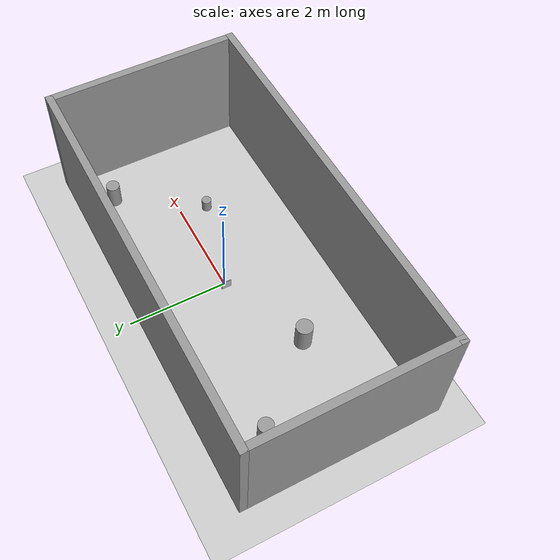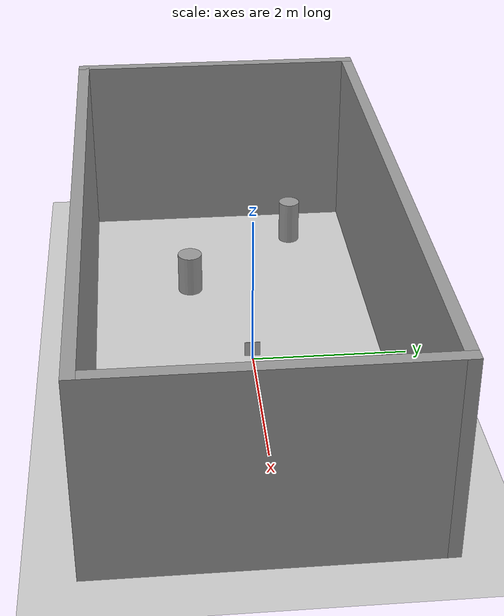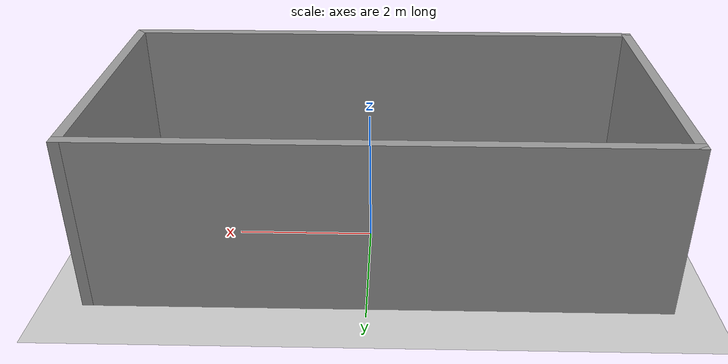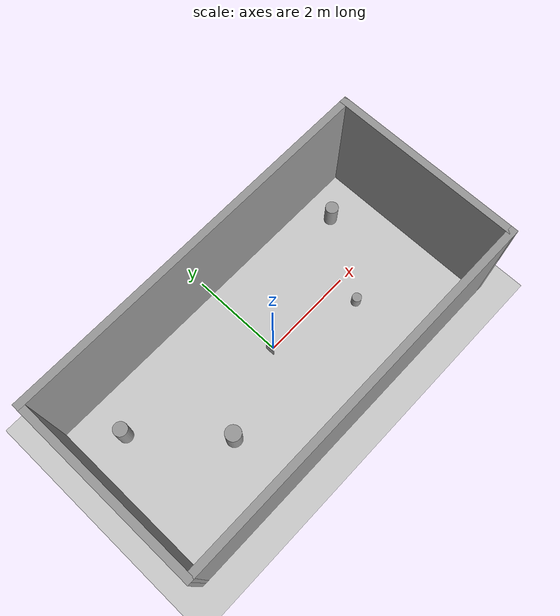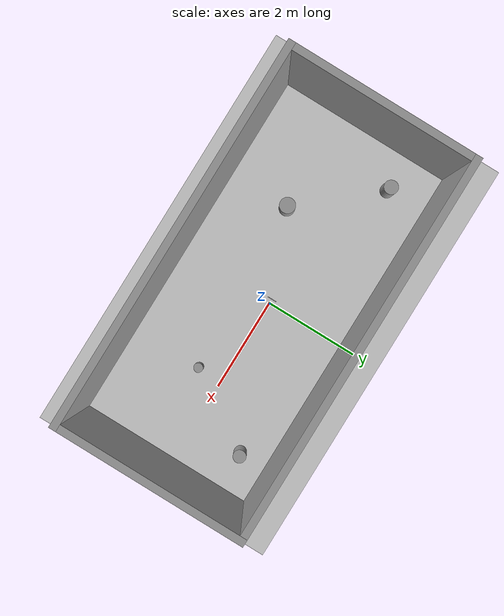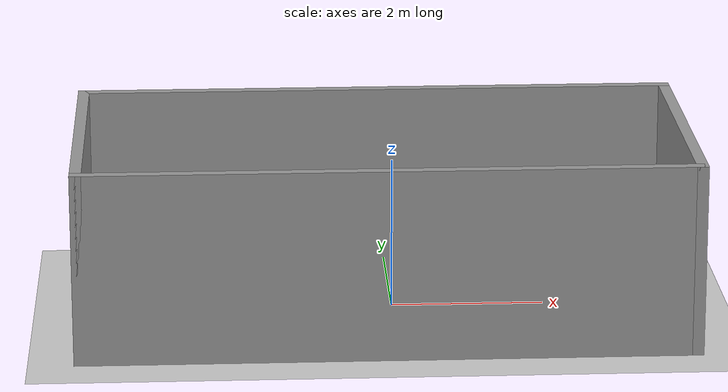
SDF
<sdf version="1.7">
 <world name="default">
  <light name="sun" type="directional">
   <pose>0 0 10 0 -0 0</pose>
   <diffuse>0.8 0.8 0.8 1</diffuse>
   <specular>0.2 0.2 0.2 1</specular>
   <attenuation>
    <range>1000</range>
    <constant>0.9</constant>
    <linear>0.01</linear>
    <quadratic>0.001</quadratic>
   </attenuation>
   <direction>-0.5 0.1 -0.9</direction>
   <spot><inner_angle>0</inner_angle><outer_angle>0</outer_angle><falloff>0</falloff></spot>
  </light>
  <model name="ground_plane">
   <static>1</static>
   <link name="link">
    <collision name="collision">
     <geometry><plane><normal>0 0 1</normal><size>100 100</size></plane></geometry>
     <surface>
      <contact><collide_bitmask>65535</collide_bitmask></contact>
      <friction><ode><mu>100</mu><mu2>50</mu2></ode></friction>
     </surface>
    </collision>
    <visual name="visual">
     <cast_shadows>0</cast_shadows>
     <geometry><plane><normal>0 0 1</normal><size>100 100</size></plane></geometry>
     <material>
      <script><uri>file://media/materials/scripts/gazebo.material</uri><name>Gazebo/Grey</name></script>
     </material>
    </visual>
   </link>
  </model>
  <gravity>0 0 -9.8</gravity>
  <magnetic_field>6e-06 2.3e-05 -4.2e-05</magnetic_field>
  <atmosphere type="adiabatic"/>
  <physics type="ode">
   <max_step_size>0.001</max_step_size>
   <real_time_factor>1</real_time_factor>
   <real_time_update_rate>1000</real_time_update_rate>
  </physics>
  <scene><ambient>0.4 0.4 0.4 1</ambient><background>0.7 0.7 0.7 1</background><shadows>1</shadows></scene>
  <spherical_coordinates>
   <surface_model>EARTH_WGS84</surface_model>
   <latitude_deg>0</latitude_deg>
   <longitude_deg>0</longitude_deg>
   <elevation>0</elevation>
   <heading_deg>0</heading_deg>
  </spherical_coordinates>
  <model name="model">
   <pose>-0.134607 0.15649 0 0 -0 0</pose>
   <link name="Wall_0">
    <collision name="Wall_0_Collision">
     <geometry><box><size>8 0.15 2.5</size></box></geometry>
     <pose>0 0 1.25 0 -0 0</pose>
    </collision>
    <visual name="Wall_0_Visual">
     <pose>0 0 1.25 0 -0 0</pose>
     <geometry><box><size>8 0.15 2.5</size></box></geometry>
     <material>
      <script><uri>file://media/materials/scripts/gazebo.material</uri><name>Gazebo/Grey</name></script>
      <ambient>1 1 1 1</ambient>
     </material>
     <meta><layer>0</layer></meta>
    </visual>
    <pose>0 -2.2525 0 0 -0 0</pose>
   </link>
   <link name="Wall_1">
    <collision name="Wall_1_Collision">
     <geometry><box><size>4 0.15 2.5</size></box></geometry>
     <pose>0 0 1.25 0 -0 0</pose>
    </collision>
    <visual name="Wall_1_Visual">
     <pose>0 0 1.25 0 -0 0</pose>
     <geometry><box><size>4 0.15 2.5</size></box></geometry>
     <material>
      <script><uri>file://media/materials/scripts/gazebo.material</uri><name>Gazebo/Grey</name></script>
      <ambient>1 1 1 1</ambient>
     </material>
     <meta><layer>0</layer></meta>
    </visual>
    <pose>3.925 -0.3275 0 0 -0 1.5708</pose>
   </link>
   <link name="Wall_2">
    <collision name="Wall_2_Collision">
     <geometry><box><size>8 0.15 2.5</size></box></geometry>
     <pose>0 0 1.25 0 -0 0</pose>
    </collision>
    <visual name="Wall_2_Visual">
     <pose>0 0 1.25 0 -0 0</pose>
     <geometry><box><size>8 0.15 2.5</size></box></geometry>
     <material>
      <script><uri>file://media/materials/scripts/gazebo.material</uri><name>Gazebo/Grey</name></script>
      <ambient>1 1 1 1</ambient>
     </material>
     <meta><layer>0</layer></meta>
    </visual>
    <pose>0 1.5975 0 0 -0 3.14159</pose>
   </link>
   <link name="Wall_3">
    <collision name="Wall_3_Collision">
     <geometry><box><size>4 0.15 2.5</size></box></geometry>
     <pose>0 0 1.25 0 -0 0</pose>
    </collision>
    <visual name="Wall_3_Visual">
     <pose>0 0 1.25 0 -0 0</pose>
     <geometry><box><size>4 0.15 2.5</size></box></geometry>
     <material>
      <script><uri>file://media/materials/scripts/gazebo.material</uri><name>Gazebo/Grey</name></script>
      <ambient>1 1 1 1</ambient>
     </material>
     <meta><layer>0</layer></meta>
    </visual>
    <pose>-3.925 -0.3275 0 0 -0 -1.5708</pose>
   </link>
   <static>1</static>
  </model>
  <model name="unit_cylinder">
   <pose>-3.20169 0.836793 0.308361 0 -0 1e-06</pose>
   <link name="link">
    <inertial>
     <mass>1</mass>
     <inertia><ixx>0.145833</ixx><ixy>0</ixy><ixz>0</ixz><iyy>0.145833</iyy><iyz>0</iyz><izz>0.125</izz></inertia>
    </inertial>
    <collision name="collision">
     <geometry><cylinder><radius>0.147272</radius><length>0.616724</length></cylinder></geometry>
    </collision>
    <visual name="visual">
     <geometry><cylinder><radius>0.147272</radius><length>0.616724</length></cylinder></geometry>
     <material>
      <script><name>Gazebo/Grey</name><uri>file://media/materials/scripts/gazebo.material</uri></script>
     </material>
    </visual>
   </link>
  </model>
  <model name="unit_cylinder_0">
   <pose>2.89899 1.09062 0.251493 0 -0 7e-06</pose>
   <link name="link">
    <inertial>
     <mass>1</mass>
     <inertia><ixx>0.145833</ixx><ixy>0</ixy><ixz>0</ixz><iyy>0.145833</iyy><iyz>0</iyz><izz>0.125</izz></inertia>
    </inertial>
    <collision name="collision">
     <geometry><cylinder><radius>0.134874</radius><length>0.502987</length></cylinder></geometry>
    </collision>
    <visual name="visual">
     <geometry><cylinder><radius>0.134874</radius><length>0.502987</length></cylinder></geometry>
     <material>
      <script><name>Gazebo/Grey</name><uri>file://media/materials/scripts/gazebo.material</uri></script>
     </material>
    </visual>
   </link>
  </model>
  <model name="unit_cylinder_1">
   <pose>1.8607 -0.535011 0.128191 -0 -0 -1e-06</pose>
   <link name="link">
    <inertial>
     <mass>1</mass>
     <inertia><ixx>0.145833</ixx><ixy>0</ixy><ixz>0</ixz><iyy>0.145833</iyy><iyz>0</iyz><izz>0.125</izz></inertia>
    </inertial>
    <collision name="collision">
     <geometry><cylinder><radius>0.097795</radius><length>0.256383</length></cylinder></geometry>
    </collision>
    <visual name="visual">
     <geometry><cylinder><radius>0.097795</radius><length>0.256383</length></cylinder></geometry>
     <material>
      <script><name>Gazebo/Grey</name><uri>file://media/materials/scripts/gazebo.material</uri></script>
     </material>
    </visual>
   </link>
  </model>
  <model name="unit_cylinder_2">
   <pose>-1.82853 -0.714345 0.284113 -1e-06 -0 -5e-06</pose>
   <link name="link">
    <inertial>
     <mass>1</mass>
     <inertia><ixx>0.145833</ixx><ixy>0</ixy><ixz>0</ixz><iyy>0.145833</iyy><iyz>0</iyz><izz>0.125</izz></inertia>
    </inertial>
    <collision name="collision">
     <geometry><cylinder><radius>0.165164</radius><length>0.568231</length></cylinder></geometry>
    </collision>
    <visual name="visual">
     <geometry><cylinder><radius>0.165164</radius><length>0.568231</length></cylinder></geometry>
     <material>
      <script><name>Gazebo/Grey</name><uri>file://media/materials/scripts/gazebo.material</uri></script>
     </material>
    </visual>
   </link>
  </model>
  <model name="Apriltag36_11_00000">
   <link name="main">
    <visual name="main_Visual">
     <geometry><box><size>0.2 0.2 0.01</size></box></geometry>
     <material>
      <script>
       <uri>model://Apriltag36_11_00000/materials/scripts</uri>
       <uri>model://Apriltag36_11_00000/materials/textures</uri>
       <name>Apriltag36_11_00000</name>
      </script>
     </material>
    </visual>
   </link>
   <static>1</static>
   <pose>-0.090179 0 0.099974 3.14116 1.56806 3.14116</pose>
  </model>
 </world>
</sdf>
